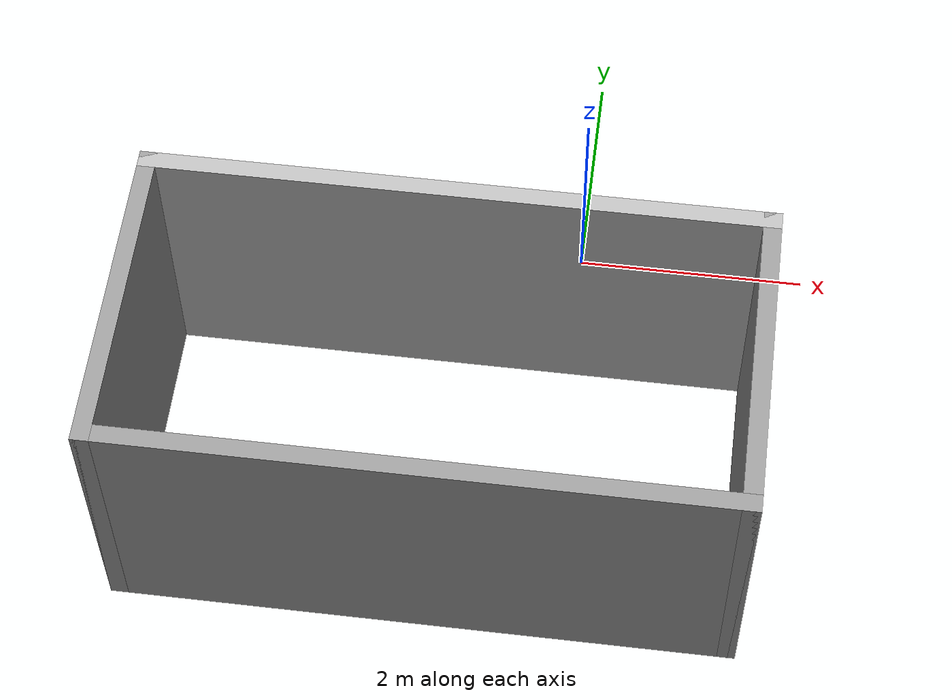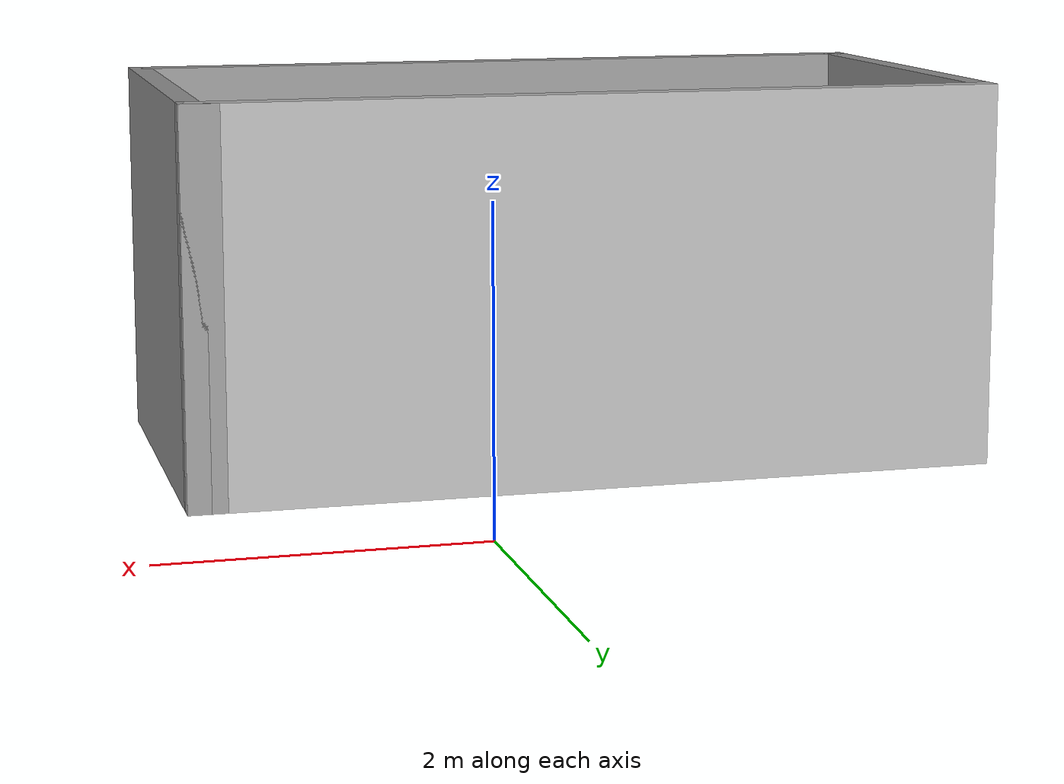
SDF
<?xml version='1.0'?>
<sdf version='1.6'>
  <model name='wall'>
    <pose frame=''>-0.97 -2.43 0 0 -0 0</pose>
    <link name='Wall_0'>
      <collision name='Wall_0_Collision'>
        <geometry>
          <box>
            <size>0.25 0.15 2.5</size>
          </box>
        </geometry>
        <pose frame=''>0 0 1.25 0 -0 0</pose>
      </collision>
      <visual name='Wall_0_Visual'>
        <pose frame=''>0 0 1.25 0 -0 0</pose>
        <geometry>
          <box>
            <size>0.25 0.15 2.5</size>
          </box>
        </geometry>
        <material>
          <script>
            <uri>file://media/materials/scripts/gazebo.material</uri>
            <name>Gazebo/Grey</name>
          </script>
          <ambient>1 1 1 1</ambient>
        </material>
      </visual>
      <pose frame=''>2.5 1.3 0 0 -0 0</pose>
    </link>
    <link name='Wall_1'>
      <collision name='Wall_1_Collision'>
        <geometry>
          <box>
            <size>5.25 0.15 2.5</size>
          </box>
        </geometry>
        <pose frame=''>0 0 1.25 0 -0 0</pose>
      </collision>
      <visual name='Wall_1_Visual'>
<material> <!-- Body material -->
          <script>
            <uri>model://example_model/materials/scripts/repeated.material</uri>
            <name>RepeatedTexture</name>
          </script>
        </material> <!-- End Body Material -->
        <pose frame=''>0 0 1.25 0 -0 0</pose>
        <geometry>
          <box>
            <size>5.25 0.15 2.5</size>
          </box>
        </geometry>
        <material>
          <script>
            <uri>file://media/materials/scripts/gazebo.material</uri>
            <name>Gazebo/Grey</name>
          </script>
          <ambient>1 1 1 1</ambient>
        </material>
      </visual>
      <pose frame=''>0 1.3 0 0 -0 3.14159</pose>
    </link>
    <link name='Wall_2'>
      <collision name='Wall_2_Collision'>
        <geometry>
          <box>
            <size>2.75 0.15 2.5</size>
          </box>
        </geometry>
        <pose frame=''>0 0 1.25 0 -0 0</pose>
      </collision>
      <visual name='Wall_2_Visual'>
        <pose frame=''>0 0 1.25 0 -0 0</pose>
        <geometry>
          <box>
            <size>2.75 0.15 2.5</size>
          </box>
        </geometry>
        <material>
          <script>
            <uri>file://media/materials/scripts/gazebo.material</uri>
            <name>Gazebo/Grey</name>
          </script>
          <ambient>1 1 1 1</ambient>
        </material>
      </visual>
      <pose frame=''>-2.55 0 0 0 0 -1.5708</pose>
    </link>
    <link name='Wall_3'>
      <collision name='Wall_3_Collision'>
        <geometry>
          <box>
            <size>5.25 0.15 2.5</size>
          </box>
        </geometry>
        <pose frame=''>0 0 1.25 0 -0 0</pose>
      </collision>
      <visual name='Wall_3_Visual'>
        <pose frame=''>0 0 1.25 0 -0 0</pose>
        <geometry>
          <box>
            <size>5.25 0.15 2.5</size>
          </box>
        </geometry>
        <material>
          <script>
            <uri>file://media/materials/scripts/gazebo.material</uri>
            <name>Gazebo/Grey</name>
          </script>
          <ambient>1 1 1 1</ambient>
        </material>
      </visual>
      <pose frame=''>0 -1.3 0 0 -0 0</pose>
    </link>
    <link name='Wall_4'>
      <collision name='Wall_4_Collision'>
        <geometry>
          <box>
            <size>2.75 0.15 2.5</size>
          </box>
        </geometry>
        <pose frame=''>0 0 1.25 0 -0 0</pose>
      </collision>
      <visual name='Wall_4_Visual'>
        <pose frame=''>0 0 1.25 0 -0 0</pose>
        <geometry>
          <box>
            <size>2.75 0.15 2.5</size>
          </box>
        </geometry>
        <material>
          <script>
            <uri>file://media/materials/scripts/gazebo.material</uri>
            <name>Gazebo/Grey</name>
          </script>
          <ambient>1 1 1 1</ambient>
        </material>
      </visual>
      <pose frame=''>2.55 0 0 0 -0 1.5708</pose>
    </link>
    <static>1</static>
  </model>
</sdf>
